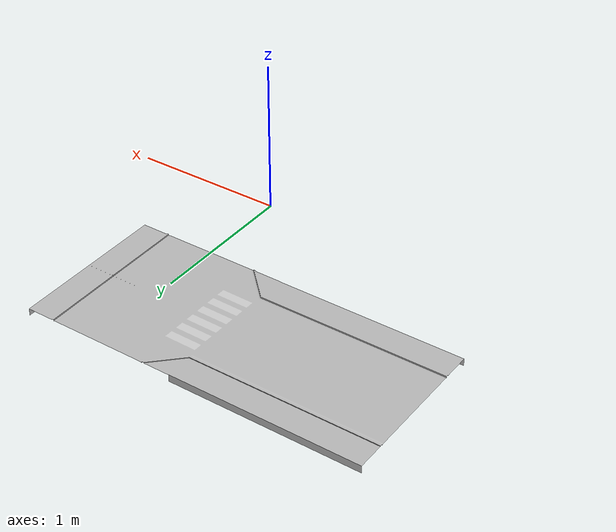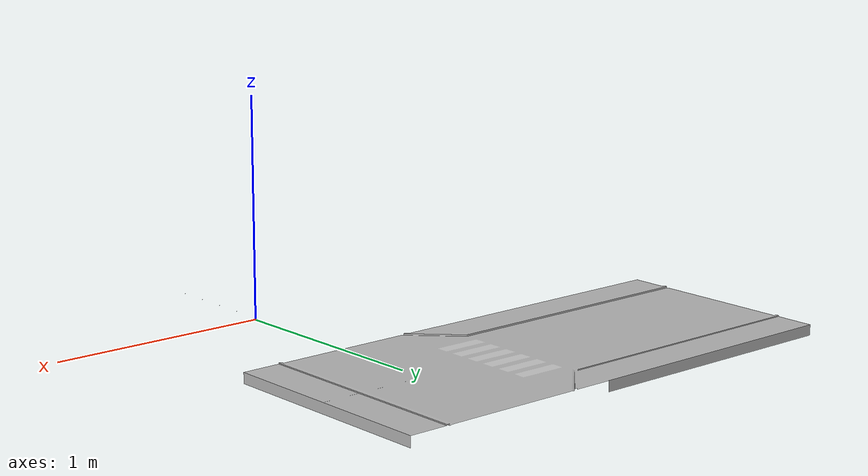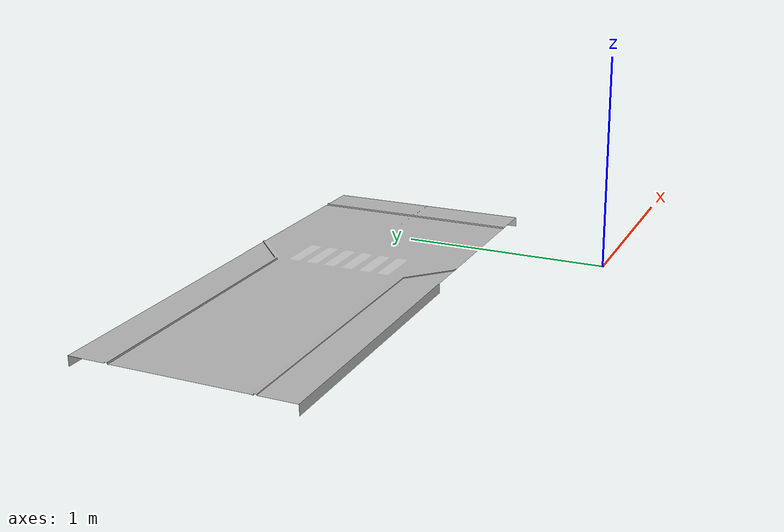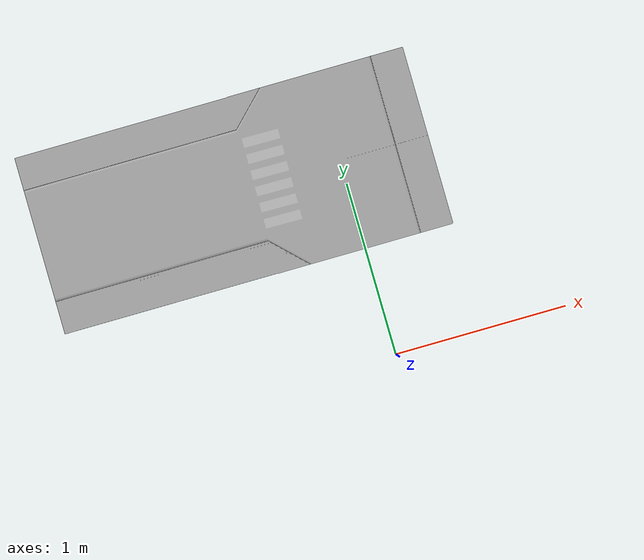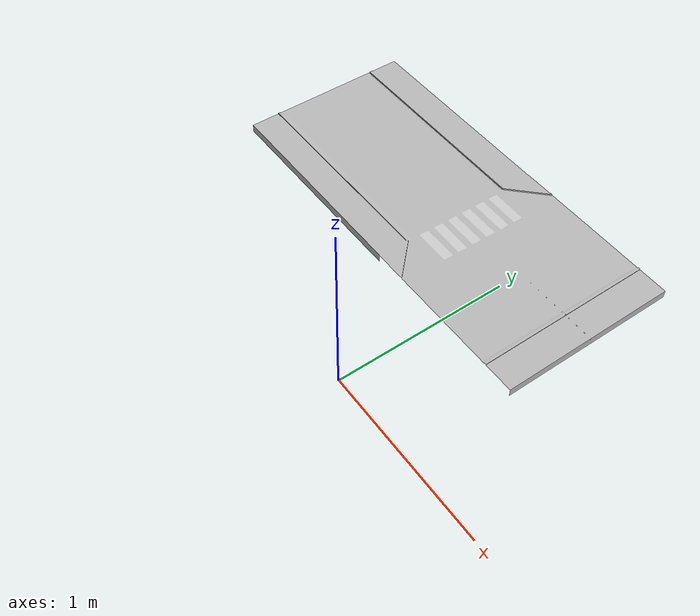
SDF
<?xml version="1.0"?>
<sdf version="1.9">
  <model name="TJunctionNoArms Road">
    <static>true</static>
    <link name="link">
      <collision name="collision">
        <geometry>
          <mesh>
            <scale>0.05 0.05 0.05</scale>
            <uri>model://Circuito/TJunctionNoArms Road/meshes/TJunctionNoArms.dae</uri>
          </mesh>
        </geometry>
      </collision>
      <visual name="road">
        <geometry>
          <mesh>
            <scale>0.05 0.05 0.05</scale>
            <uri>model://Circuito/TJunctionNoArms Road/meshes/TJunctionNoArms.dae</uri>
          </mesh>
        </geometry>
      </visual>
    </link>
  </model>
</sdf>
